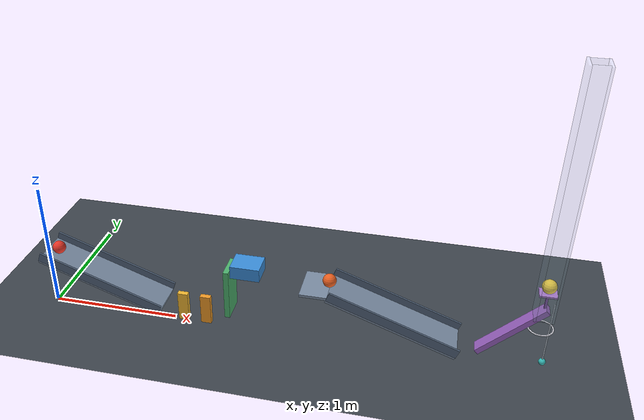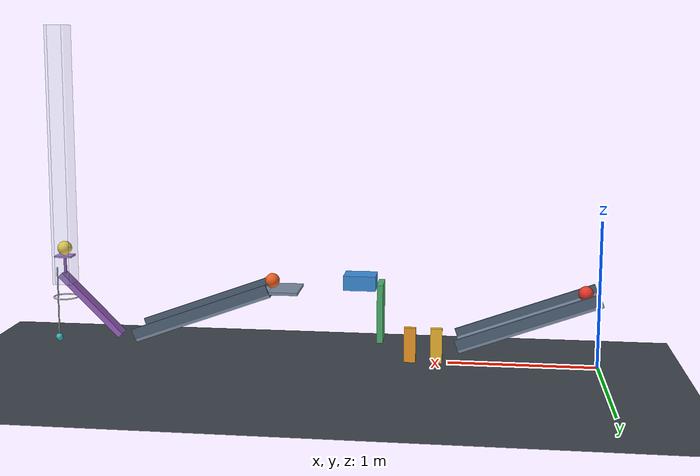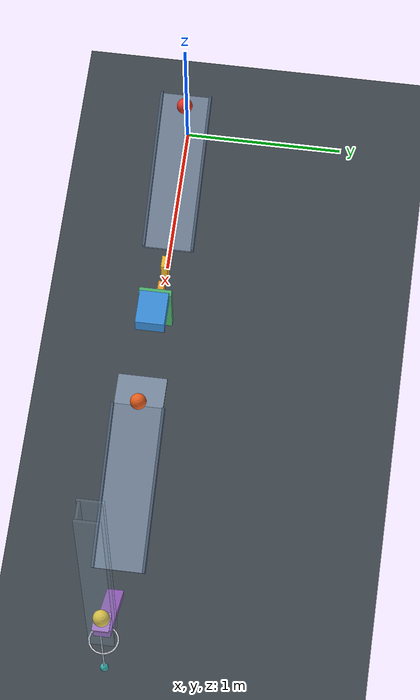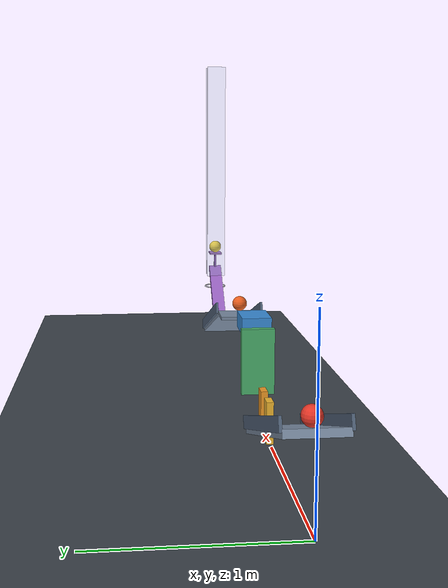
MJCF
<mujoco model="passive_chain_reaction_corrected">
  <compiler angle="degree" autolimits="true" inertiafromgeom="true"/>
  <option timestep="0.002" gravity="0 0 -9.81" integrator="implicitfast" solver="Newton" iterations="100" tolerance="1e-9"/>
  <size njmax="2000" nconmax="500"/>
  <statistic center="2 0 0.6" extent="4.5"/>

  <!-- Contact damping approximates restitution 0.05; MuJoCo has no exact restitution coefficient. -->
  <!-- Friction entries are sliding, torsional, and rolling. All initial velocities are zero. -->

  <worldbody>
    <light name="main_light" pos="1 -3 6" dir="0 0 -1" directional="true"/>
    <camera name="overview" pos="5 -7 4" xyaxes="0.919 0.394 0 -0.185 0.432 0.883"/>
    <geom name="floor" type="plane" size="8 4 0.1" friction="0.70 0.005 0.005" condim="6" solref="0.008 0.6901" rgba="0.24 0.27 0.30 1"/>

    <!-- Each inclined surface is 1.00 m long, 0.30 m wide, and inclined at 20 degrees. -->
    <!-- Its high surface endpoint is at z = 0.49202014 and its low endpoint at z = 0.15. -->
    <body name="ramp1" pos="0 0 0.49202014">
      <geom name="ramp1_surface" type="box" pos="0.46300591 0 -0.18980392" euler="0 20 0" size="0.50 0.15 0.02" friction="0.70 0.005 0.005" condim="6" solref="0.008 0.6901" rgba="0.48 0.55 0.64 1"/>
      <geom name="ramp1_left_rail" type="box" pos="0.47668671 0.155 -0.15221622" euler="0 20 0" size="0.50 0.008 0.035" friction="0.70 0.005 0.005" condim="6" solref="0.008 0.6901" rgba="0.32 0.39 0.48 1"/>
      <geom name="ramp1_right_rail" type="box" pos="0.47668671 -0.155 -0.15221622" euler="0 20 0" size="0.50 0.008 0.035" friction="0.70 0.005 0.005" condim="6" solref="0.008 0.6901" rgba="0.32 0.39 0.48 1"/>
    </body>

    <body name="ball1" pos="0.09227642 0 0.51164316">
      <freejoint name="ball1_free"/>
      <geom name="ball1_sphere" type="sphere" size="0.05" mass="0.20" friction="0.70 0.005 0.005" condim="6" solref="0.008 0.6901" rgba="0.92 0.22 0.16 1"/>
    </body>

    <!-- Domino1's near face is 0.10 m beyond ramp1's low surface endpoint. -->
    <body name="domino1" pos="1.07969262 0 0.12">
      <freejoint name="domino1_free"/>
      <geom name="domino1_block" type="box" size="0.04 0.02 0.12" mass="0.25" friction="0.70 0.005 0.005" condim="6" solref="0.008 0.6901" rgba="0.95 0.72 0.19 1"/>
    </body>

    <body name="domino2" pos="1.25969262 0 0.12">
      <freejoint name="domino2_free"/>
      <geom name="domino2_block" type="box" size="0.04 0.02 0.12" mass="0.25" friction="0.70 0.005 0.005" condim="6" solref="0.008 0.6901" rgba="0.95 0.61 0.15 1"/>
    </body>

    <!-- Flap near face is 0.18 m beyond domino2's initial center. -->
    <!-- Bottom hinging allows gravity to assist its clockwise swing after the domino impact. -->
    <body name="flap1" pos="1.45969262 0 0.15">
      <joint name="flap1_hinge" type="hinge" axis="0 1 0" range="0 65" damping="0.04" armature="0" solreflimit="0.004 1" solimplimit="0.99 0.999 0.0001"/>
      <geom name="flap1_panel" type="box" pos="0 0 0.20" size="0.02 0.10 0.20" mass="0.30" friction="0.70 0.005 0.005" condim="6" solref="0.008 0.6901" rgba="0.30 0.70 0.43 1"/>
    </body>

    <!-- Ball2's near surface is reached after 0.45 m of cart translation. -->
    <body name="cart1" pos="1.59969262 0 0.555">
      <joint name="cart1_slide" type="slide" axis="1 0 0" range="0 0.68" damping="0.20" armature="0" solreflimit="0.004 1" solimplimit="0.99 0.999 0.0001"/>
      <geom name="cart1_chassis" type="box" size="0.11 0.09 0.05" mass="0.50" friction="0.70 0.005 0.005" condim="6" solref="0.008 0.6901" rgba="0.23 0.56 0.86 1"/>
    </body>

    <!-- Ball2 rests 0.005 m behind the shelf edge, requiring only a short initiating push. -->
    <body name="ramp2" pos="2.21469262 0 0.49202014">
      <geom name="ramp2_surface" type="box" pos="0.46300591 0 -0.18980392" euler="0 20 0" size="0.50 0.15 0.02" friction="0.70 0.005 0.005" condim="6" solref="0.008 0.6901" rgba="0.48 0.55 0.64 1"/>
      <geom name="ramp2_start_shelf" type="box" pos="-0.10 0 -0.01" size="0.10 0.15 0.01" friction="0.70 0.005 0.005" condim="6" solref="0.008 0.6901" rgba="0.48 0.55 0.64 1"/>
      <geom name="ramp2_left_rail" type="box" pos="0.47668671 0.155 -0.15221622" euler="0 20 0" size="0.50 0.008 0.035" friction="0.70 0.005 0.005" condim="6" solref="0.008 0.6901" rgba="0.32 0.39 0.48 1"/>
      <geom name="ramp2_right_rail" type="box" pos="0.47668671 -0.155 -0.15221622" euler="0 20 0" size="0.50 0.008 0.035" friction="0.70 0.005 0.005" condim="6" solref="0.008 0.6901" rgba="0.32 0.39 0.48 1"/>
    </body>

    <body name="ball2" pos="2.20969262 0 0.54202014">
      <freejoint name="ball2_free"/>
      <geom name="ball2_sphere" type="sphere" size="0.05" mass="0.20" friction="0.70 0.005 0.005" condim="6" solref="0.008 0.6901" rgba="0.93 0.38 0.13 1"/>
    </body>

    <!-- Initial beam inclination is 45 degrees; the hinge allows another 45 degrees to vertical. -->
    <!-- The left leading corner is 0.12 m beyond ramp2's low surface endpoint. -->
    <!-- Beam, launch post, and tray masses sum to 0.50 kg. -->
    <!-- Spring preload is initially smaller than the opposing moment of the carried ball and fixture. -->
    <body name="lever1" pos="3.50065941 0 0.33713203" euler="0 -45 0">
      <joint name="lever1_hinge" type="hinge" axis="0 -1 0" range="0 45" damping="0.04" stiffness="0.22" springref="90" armature="0" solreflimit="0.004 1" solimplimit="0.99 0.999 0.0001"/>
      <geom name="lever1_beam" type="box" size="0.30 0.05 0.02" mass="0.46" friction="0.70 0.005 0.005" condim="6" solref="0.008 0.6901" rgba="0.61 0.39 0.77 1"/>
      <geom name="lever1_launch_post" type="box" pos="0.33021887 0 0.06151829" euler="0 45 0" size="0.008 0.008 0.060" mass="0.025" friction="0.70 0.005 0.005" condim="6" solref="0.008 0.6901" rgba="0.51 0.31 0.67 1"/>
      <geom name="lever1_launch_tray" type="box" pos="0.37476659 0 0.10606602" euler="0 45 0" size="0.060 0.050 0.006" mass="0.015" friction="0.70 0.005 0.005" condim="6" solref="0.008 0.6901" rgba="0.70 0.48 0.84 1"/>
    </body>

    <body name="ball3" pos="3.69065941 0 0.73313203">
      <freejoint name="ball3_free"/>
      <geom name="ball3_sphere" type="sphere" size="0.05" mass="0.20" contype="1" conaffinity="3" friction="0.70 0.005 0.005" condim="6" solref="0.008 0.6901" rgba="0.96 0.82 0.22 1"/>
    </body>

    <!-- Only ball3 collides with these passive vertical guide walls. -->
    <!-- The guide has 0.104 m internal width and ends 0.10 m above the ring. -->
    <body name="ball3_guide" pos="3.69065941 0 1.38313203">
      <geom name="ball3_guide_left" type="box" pos="-0.060 0 0" size="0.008 0.075 0.900" contype="2" conaffinity="0" friction="0.70 0.005 0.005" condim="6" solref="0.008 0.6901" rgba="0.65 0.79 0.88 0.20"/>
      <geom name="ball3_guide_right" type="box" pos="0.060 0 0" size="0.008 0.075 0.900" contype="2" conaffinity="0" friction="0.70 0.005 0.005" condim="6" solref="0.008 0.6901" rgba="0.65 0.79 0.88 0.20"/>
      <geom name="ball3_guide_front" type="box" pos="0 -0.060 0" size="0.052 0.008 0.900" contype="2" conaffinity="0" friction="0.70 0.005 0.005" condim="6" solref="0.008 0.6901" rgba="0.65 0.79 0.88 0.20"/>
      <geom name="ball3_guide_back" type="box" pos="0 0.060 0" size="0.052 0.008 0.900" contype="2" conaffinity="0" friction="0.70 0.005 0.005" condim="6" solref="0.008 0.6901" rgba="0.65 0.79 0.88 0.20"/>
    </body>

    <!-- Ring center is 0.35 m below ball3's initial center. -->
    <!-- Capsule segments form a horizontal ring with a 0.16 m clear inscribed diameter. -->
    <body name="ring1" pos="3.69065941 0 0.38313203">
      <geom name="ring1_segment01" type="capsule" fromto="0.086666 0 0 0.080069 0.033167 0" size="0.005" friction="0.70 0.005 0.005" condim="6" solref="0.008 0.6901" rgba="0.88 0.88 0.92 1"/>
      <geom name="ring1_segment02" type="capsule" fromto="0.080069 0.033167 0 0.061282 0.061282 0" size="0.005" friction="0.70 0.005 0.005" condim="6" solref="0.008 0.6901" rgba="0.88 0.88 0.92 1"/>
      <geom name="ring1_segment03" type="capsule" fromto="0.061282 0.061282 0 0.033167 0.080069 0" size="0.005" friction="0.70 0.005 0.005" condim="6" solref="0.008 0.6901" rgba="0.88 0.88 0.92 1"/>
      <geom name="ring1_segment04" type="capsule" fromto="0.033167 0.080069 0 0 0.086666 0" size="0.005" friction="0.70 0.005 0.005" condim="6" solref="0.008 0.6901" rgba="0.88 0.88 0.92 1"/>
      <geom name="ring1_segment05" type="capsule" fromto="0 0.086666 0 -0.033167 0.080069 0" size="0.005" friction="0.70 0.005 0.005" condim="6" solref="0.008 0.6901" rgba="0.88 0.88 0.92 1"/>
      <geom name="ring1_segment06" type="capsule" fromto="-0.033167 0.080069 0 -0.061282 0.061282 0" size="0.005" friction="0.70 0.005 0.005" condim="6" solref="0.008 0.6901" rgba="0.88 0.88 0.92 1"/>
      <geom name="ring1_segment07" type="capsule" fromto="-0.061282 0.061282 0 -0.080069 0.033167 0" size="0.005" friction="0.70 0.005 0.005" condim="6" solref="0.008 0.6901" rgba="0.88 0.88 0.92 1"/>
      <geom name="ring1_segment08" type="capsule" fromto="-0.080069 0.033167 0 -0.086666 0 0" size="0.005" friction="0.70 0.005 0.005" condim="6" solref="0.008 0.6901" rgba="0.88 0.88 0.92 1"/>
      <geom name="ring1_segment09" type="capsule" fromto="-0.086666 0 0 -0.080069 -0.033167 0" size="0.005" friction="0.70 0.005 0.005" condim="6" solref="0.008 0.6901" rgba="0.88 0.88 0.92 1"/>
      <geom name="ring1_segment10" type="capsule" fromto="-0.080069 -0.033167 0 -0.061282 -0.061282 0" size="0.005" friction="0.70 0.005 0.005" condim="6" solref="0.008 0.6901" rgba="0.88 0.88 0.92 1"/>
      <geom name="ring1_segment11" type="capsule" fromto="-0.061282 -0.061282 0 -0.033167 -0.080069 0" size="0.005" friction="0.70 0.005 0.005" condim="6" solref="0.008 0.6901" rgba="0.88 0.88 0.92 1"/>
      <geom name="ring1_segment12" type="capsule" fromto="-0.033167 -0.080069 0 0 -0.086666 0" size="0.005" friction="0.70 0.005 0.005" condim="6" solref="0.008 0.6901" rgba="0.88 0.88 0.92 1"/>
      <geom name="ring1_segment13" type="capsule" fromto="0 -0.086666 0 0.033167 -0.080069 0" size="0.005" friction="0.70 0.005 0.005" condim="6" solref="0.008 0.6901" rgba="0.88 0.88 0.92 1"/>
      <geom name="ring1_segment14" type="capsule" fromto="0.033167 -0.080069 0 0.061282 -0.061282 0" size="0.005" friction="0.70 0.005 0.005" condim="6" solref="0.008 0.6901" rgba="0.88 0.88 0.92 1"/>
      <geom name="ring1_segment15" type="capsule" fromto="0.061282 -0.061282 0 0.080069 -0.033167 0" size="0.005" friction="0.70 0.005 0.005" condim="6" solref="0.008 0.6901" rgba="0.88 0.88 0.92 1"/>
      <geom name="ring1_segment16" type="capsule" fromto="0.080069 -0.033167 0 0.086666 0 0" size="0.005" friction="0.70 0.005 0.005" condim="6" solref="0.008 0.6901" rgba="0.88 0.88 0.92 1"/>
    </body>

    <!-- The vertical rod is 0.06 m off the fall axis, allowing ball3 to reach the bob without hitting the rod. -->
    <!-- With radii 0.05 and 0.025 m, nominal contact occurs after a further 0.25 m center-height fall. -->
    <body name="pendulum1" pos="3.75065941 0 0.58813203">
      <joint name="pendulum1_hinge" type="hinge" axis="0 1 0" damping="0.04" armature="0"/>
      <geom name="pendulum1_rod" type="capsule" fromto="0 0 0 0 0 -0.50" size="0.005" mass="0.03" friction="0.70 0.005 0.005" condim="6" solref="0.008 0.6901" rgba="0.68 0.72 0.77 1"/>
      <geom name="pendulum1_bob" type="sphere" pos="0 0 -0.50" size="0.025" mass="0.32" friction="0.70 0.005 0.005" condim="6" solref="0.008 0.6901" rgba="0.21 0.73 0.72 1"/>
    </body>
  </worldbody>

  <keyframe>
    <key name="start" time="0"/>
  </keyframe>
</mujoco>
